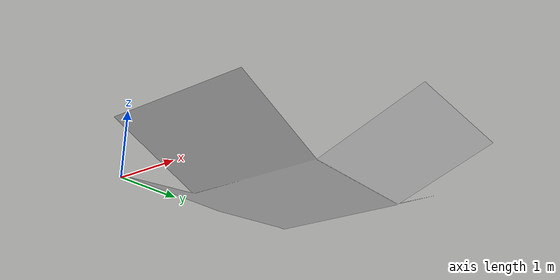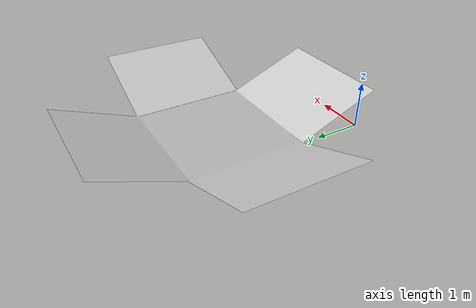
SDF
<?xml version="1.0" ?>
<sdf version="1.6">
  <model name="qr_code3">
    <static>true</static>
    <link name="link">
      <visual name="visual">
        <geometry>
          <mesh>
            <uri>model://qr_code3/meshes/qr_code.dae</uri>
            <scale>2.5 2.5 1</scale>
          </mesh>
        </geometry>
      </visual>
    </link>
  </model>
</sdf>
